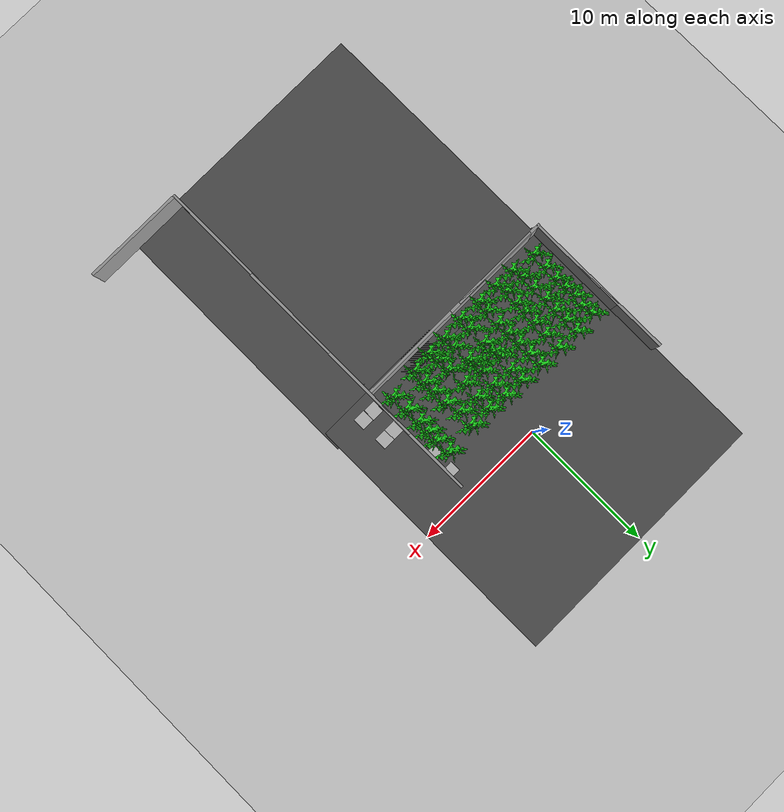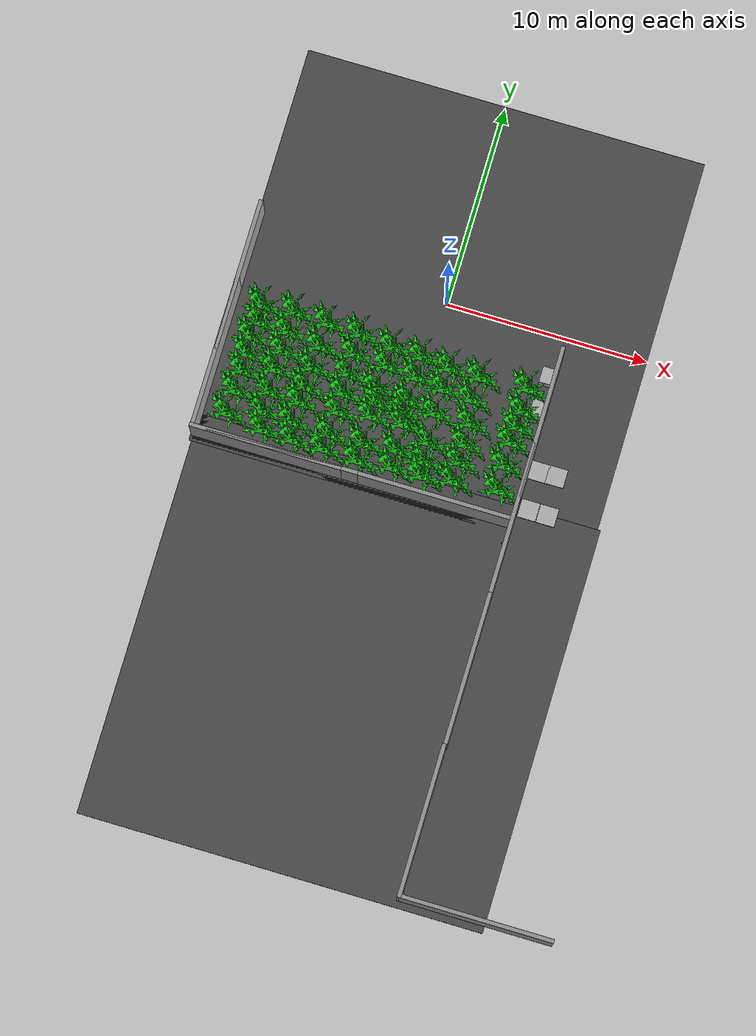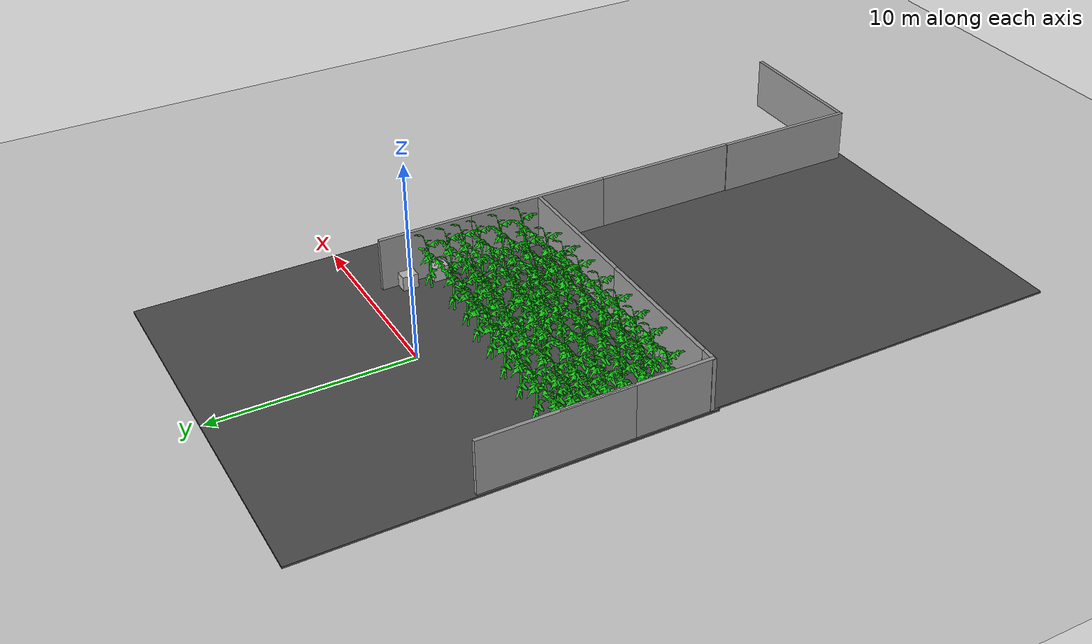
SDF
<sdf version="1.7">
 <world name="default">
  <model name="ground_plane">
   <static>1</static>
   <link name="link">
    <collision name="collision">
     <geometry><plane><normal>0 0 1</normal><size>100 100</size></plane></geometry>
     <surface><friction><ode><mu>100</mu><mu2>50</mu2></ode></friction></surface>
    </collision>
    <visual name="visual">
     <cast_shadows>0</cast_shadows>
     <geometry><plane><normal>0 0 1</normal><size>100 100</size></plane></geometry>
     <material>
      <script><uri>file://media/materials/scripts/gazebo.material</uri><name>Gazebo/Grey</name></script>
     </material>
    </visual>
   </link>
  </model>
  <model name="plant_clone">
   <static>1</static>
   <link name="link">
    <visual name="visual">
     <geometry><mesh><scale>0.01 0.01 0.01</scale><uri>model://plant/meshes/plant.STL</uri></mesh></geometry>
     <material>
      <ambient>0.1 0.8 0.1 1</ambient>
      <diffuse>0.1 0.8 0.1 1</diffuse>
      <specular>0.01 0.01 0.01 1</specular>
      <emissive>0 0 0 1</emissive>
     </material>
    </visual>
   </link>
   <pose>1.66545 -2.31829 0.002201 1.57 -0 0</pose>
  </model>
  <model name="plant_clone_0">
   <static>1</static>
   <link name="link">
    <visual name="visual">
     <geometry><mesh><scale>0.01 0.01 0.01</scale><uri>model://plant/meshes/plant.STL</uri></mesh></geometry>
     <material>
      <ambient>0.1 0.8 0.1 1</ambient>
      <diffuse>0.1 0.8 0.1 1</diffuse>
      <specular>0.01 0.01 0.01 1</specular>
      <emissive>0 0 0 1</emissive>
     </material>
    </visual>
   </link>
   <pose>1.5257 -3.44822 0.004669 1.57 -0 0</pose>
  </model>
  <model name="plant_clone_1_clone_10">
   <static>1</static>
   <link name="link">
    <visual name="visual">
     <geometry><mesh><scale>0.01 0.01 0.01</scale><uri>model://plant/meshes/plant.STL</uri></mesh></geometry>
     <material>
      <ambient>0.1 0.8 0.1 1</ambient>
      <diffuse>0.1 0.8 0.1 1</diffuse>
      <specular>0.01 0.01 0.01 1</specular>
      <emissive>0 0 0 1</emissive>
     </material>
    </visual>
   </link>
   <pose>0.130082 -2.29707 0.000845 1.57 -0 0</pose>
  </model>
  <model name="plant_clone_1_clone_11">
   <static>1</static>
   <link name="link">
    <visual name="visual">
     <geometry><mesh><scale>0.01 0.01 0.01</scale><uri>model://plant/meshes/plant.STL</uri></mesh></geometry>
     <material>
      <ambient>0.1 0.8 0.1 1</ambient>
      <diffuse>0.1 0.8 0.1 1</diffuse>
      <specular>0.01 0.01 0.01 1</specular>
      <emissive>0 0 0 1</emissive>
     </material>
    </visual>
   </link>
   <pose>0.121458 -3.34587 0.000845 1.57 -0 0</pose>
  </model>
  <model name="plant_clone_1_clone_13">
   <static>1</static>
   <link name="link">
    <visual name="visual">
     <geometry><mesh><scale>0.01 0.01 0.01</scale><uri>model://plant/meshes/plant.STL</uri></mesh></geometry>
     <material>
      <ambient>0.1 0.8 0.1 1</ambient>
      <diffuse>0.1 0.8 0.1 1</diffuse>
      <specular>0.01 0.01 0.01 1</specular>
      <emissive>0 0 0 1</emissive>
     </material>
    </visual>
   </link>
   <pose>-1.29326 -2.14513 0.000845 1.57 -0 0</pose>
  </model>
  <model name="plant_clone_1_clone_14">
   <static>1</static>
   <link name="link">
    <visual name="visual">
     <geometry><mesh><scale>0.01 0.01 0.01</scale><uri>model://plant/meshes/plant.STL</uri></mesh></geometry>
     <material>
      <ambient>0.1 0.8 0.1 1</ambient>
      <diffuse>0.1 0.8 0.1 1</diffuse>
      <specular>0.01 0.01 0.01 1</specular>
      <emissive>0 0 0 1</emissive>
     </material>
    </visual>
   </link>
   <pose>-1.26249 -3.15905 0.000845 1.57 -0 0</pose>
  </model>
  <model name="plant_clone_1_clone_16">
   <static>1</static>
   <link name="link">
    <visual name="visual">
     <geometry><mesh><scale>0.01 0.01 0.01</scale><uri>model://plant/meshes/plant.STL</uri></mesh></geometry>
     <material>
      <ambient>0.1 0.8 0.1 1</ambient>
      <diffuse>0.1 0.8 0.1 1</diffuse>
      <specular>0.01 0.01 0.01 1</specular>
      <emissive>0 0 0 1</emissive>
     </material>
    </visual>
   </link>
   <pose>-2.76366 -2.09337 0.000845 1.57 -0 0</pose>
  </model>
  <model name="plant_clone_1_clone_17">
   <static>1</static>
   <link name="link">
    <visual name="visual">
     <geometry><mesh><scale>0.01 0.01 0.01</scale><uri>model://plant/meshes/plant.STL</uri></mesh></geometry>
     <material>
      <ambient>0.1 0.8 0.1 1</ambient>
      <diffuse>0.1 0.8 0.1 1</diffuse>
      <specular>0.01 0.01 0.01 1</specular>
      <emissive>0 0 0 1</emissive>
     </material>
    </visual>
   </link>
   <pose>-2.75946 -3.03792 0.000845 1.57 -0 0</pose>
  </model>
  <model name="plant_clone_1_clone_19">
   <static>1</static>
   <link name="link">
    <visual name="visual">
     <geometry><mesh><scale>0.01 0.01 0.01</scale><uri>model://plant/meshes/plant.STL</uri></mesh></geometry>
     <material>
      <ambient>0.1 0.8 0.1 1</ambient>
      <diffuse>0.1 0.8 0.1 1</diffuse>
      <specular>0.01 0.01 0.01 1</specular>
      <emissive>0 0 0 1</emissive>
     </material>
    </visual>
   </link>
   <pose>3.972 -2.18792 0.000845 1.57 -0 0</pose>
  </model>
  <model name="plant_clone_1_clone_20">
   <static>1</static>
   <link name="link">
    <visual name="visual">
     <geometry><mesh><scale>0.01 0.01 0.01</scale><uri>model://plant/meshes/plant.STL</uri></mesh></geometry>
     <material>
      <ambient>0.1 0.8 0.1 1</ambient>
      <diffuse>0.1 0.8 0.1 1</diffuse>
      <specular>0.01 0.01 0.01 1</specular>
      <emissive>0 0 0 1</emissive>
     </material>
    </visual>
   </link>
   <pose>4.03807 -3.30841 0.000845 1.57 -0 0</pose>
  </model>
  <model name="grey_wall_clone_clone_1">
   <static>1</static>
   <link name="link">
    <pose>0 0 1.4 0 -0 0</pose>
    <collision name="collision"><geometry><box><size>7.5 0.2 2.8</size></box></geometry></collision>
    <visual name="visual">
     <cast_shadows>0</cast_shadows>
     <geometry><box><size>7.5 0.2 2.8</size></box></geometry>
     <material>
      <script>
       <uri>model://grey_wall/materials/scripts</uri>
       <uri>model://grey_wall/materials/textures</uri>
       <name>vrc/grey_wall</name>
      </script>
     </material>
    </visual>
   </link>
   <pose>5.99553 -4.61755 0 0 -0 1.57</pose>
  </model>
  <model name="grey_wall_clone_clone_1_clone">
   <static>1</static>
   <link name="link">
    <pose>0 0 1.4 0 -0 0</pose>
    <collision name="collision"><geometry><box><size>7.5 0.2 2.8</size></box></geometry></collision>
    <visual name="visual">
     <cast_shadows>0</cast_shadows>
     <geometry><box><size>7.5 0.2 2.8</size></box></geometry>
     <material>
      <script>
       <uri>model://grey_wall/materials/scripts</uri>
       <uri>model://grey_wall/materials/textures</uri>
       <name>vrc/grey_wall</name>
      </script>
     </material>
    </visual>
   </link>
   <pose>5.98359 -9.46121 0 0 -0 1.57</pose>
  </model>
  <model name="cafe_table">
   <static>1</static>
   <link name="link">
    <collision name="surface">
     <pose>0 0 0.755 0 -0 0</pose>
     <geometry><box><size>0.913 0.913 0.04</size></box></geometry>
    </collision>
    <collision name="column">
     <pose>0 0 0.37 0 -0 0</pose>
     <geometry><box><size>0.042 0.042 0.74</size></box></geometry>
    </collision>
    <collision name="base">
     <pose>0 0 0.02 0 -0 0</pose>
     <geometry><box><size>0.56 0.56 0.04</size></box></geometry>
    </collision>
    <visual name="visual">
     <geometry><mesh><uri>model://cafe_table/meshes/cafe_table.dae</uri></mesh></geometry>
    </visual>
   </link>
   <pose>6.58649 -8.57944 0 0 -0 0</pose>
  </model>
  <model name="cafe_table_clone">
   <static>1</static>
   <link name="link">
    <collision name="surface">
     <pose>0 0 0.755 0 -0 0</pose>
     <geometry><box><size>0.913 0.913 0.04</size></box></geometry>
    </collision>
    <collision name="column">
     <pose>0 0 0.37 0 -0 0</pose>
     <geometry><box><size>0.042 0.042 0.74</size></box></geometry>
    </collision>
    <collision name="base">
     <pose>0 0 0.02 0 -0 0</pose>
     <geometry><box><size>0.56 0.56 0.04</size></box></geometry>
    </collision>
    <visual name="visual">
     <geometry><mesh><uri>model://cafe_table/meshes/cafe_table.dae</uri></mesh></geometry>
    </visual>
   </link>
   <pose>7.51863 -8.58481 0 0 -0 0</pose>
  </model>
  <model name="cafe_table_clone_clone">
   <static>1</static>
   <link name="link">
    <collision name="surface">
     <pose>0 0 0.755 0 -0 0</pose>
     <geometry><box><size>0.913 0.913 0.04</size></box></geometry>
    </collision>
    <collision name="column">
     <pose>0 0 0.37 0 -0 0</pose>
     <geometry><box><size>0.042 0.042 0.74</size></box></geometry>
    </collision>
    <collision name="base">
     <pose>0 0 0.02 0 -0 0</pose>
     <geometry><box><size>0.56 0.56 0.04</size></box></geometry>
    </collision>
    <visual name="visual">
     <geometry><mesh><uri>model://cafe_table/meshes/cafe_table.dae</uri></mesh></geometry>
    </visual>
   </link>
   <pose>6.53813 -6.66995 0 0 -0 0</pose>
  </model>
  <model name="cafe_table_clone_clone_0">
   <static>1</static>
   <link name="link">
    <collision name="surface">
     <pose>0 0 0.755 0 -0 0</pose>
     <geometry><box><size>0.913 0.913 0.04</size></box></geometry>
    </collision>
    <collision name="column">
     <pose>0 0 0.37 0 -0 0</pose>
     <geometry><box><size>0.042 0.042 0.74</size></box></geometry>
    </collision>
    <collision name="base">
     <pose>0 0 0.02 0 -0 0</pose>
     <geometry><box><size>0.56 0.56 0.04</size></box></geometry>
    </collision>
    <visual name="visual">
     <geometry><mesh><uri>model://cafe_table/meshes/cafe_table.dae</uri></mesh></geometry>
    </visual>
   </link>
   <pose>7.40882 -6.66009 0 0 -0 0</pose>
  </model>
  <model name="coke_can_clone_0">
   <link name="link">
    <inertial>
     <pose>0 0 0.06 0 -0 0</pose>
     <mass>0.39</mass>
     <inertia>
      <ixx>0.00055575</ixx>
      <ixy>0</ixy>
      <ixz>0</ixz>
      <iyy>0.00055575</iyy>
      <iyz>0</iyz>
      <izz>0.0001755</izz>
     </inertia>
    </inertial>
    <collision name="collision">
     <pose>0.003937 0.004724 -0.18 0 -0 0</pose>
     <geometry><mesh><uri>model://coke_can/meshes/coke_can.dae</uri></mesh></geometry>
     <surface>
      <friction><ode><mu>1</mu><mu2>1</mu2></ode></friction>
      <contact><ode><kp>1e+07</kp><kd>1</kd><min_depth>0.001</min_depth><max_vel>0.1</max_vel></ode></contact>
     </surface>
    </collision>
    <visual name="visual">
     <pose>0.003937 0.004724 -0.18 0 -0 0</pose>
     <geometry><mesh><uri>model://coke_can/meshes/coke_can.dae</uri></mesh></geometry>
    </visual>
   </link>
   <pose>5.79005 -10.3478 0.04743 -0.009854 0.00353 -0.226614</pose>
  </model>
  <model name="number5">
   <pose>5.71 -2.09 0.4 0 -0 0</pose>
   <static>1</static>
   <link name="link">
    <visual name="visual">
     <geometry><mesh><uri>model://number1/meshes/number.dae</uri></mesh></geometry>
     <material>
      <script>
       <uri>model://number5/materials/scripts</uri>
       <uri>model://number5/materials/textures</uri>
       <name>Number/Five</name>
      </script>
     </material>
    </visual>
   </link>
  </model>
  <model name="asphalt_plane">
   <static>1</static>
   <link name="link">
    <collision name="collision"><geometry><box><size>20 20 0.1</size></box></geometry></collision>
    <visual name="visual">
     <cast_shadows>0</cast_shadows>
     <geometry><box><size>20 20 0.1</size></box></geometry>
     <material>
      <script>
       <uri>model://asphalt_plane/materials/scripts</uri>
       <uri>model://asphalt_plane/materials/textures</uri>
       <name>vrc/asphalt</name>
      </script>
     </material>
    </visual>
   </link>
   <pose>0.007662 0.157905 0 0 -0 0</pose>
  </model>
  <model name="asphalt_plane_clone_clone_2">
   <static>1</static>
   <link name="link">
    <collision name="collision"><geometry><box><size>20 20 0.1</size></box></geometry></collision>
    <visual name="visual">
     <cast_shadows>0</cast_shadows>
     <geometry><box><size>20 20 0.1</size></box></geometry>
     <material>
      <script>
       <uri>model://asphalt_plane/materials/scripts</uri>
       <uri>model://asphalt_plane/materials/textures</uri>
       <name>vrc/asphalt</name>
      </script>
     </material>
    </visual>
   </link>
   <pose>0.14456 -18.4475 0 0 -0 0</pose>
  </model>
  <model name="plant_clone_0_clone">
   <static>1</static>
   <link name="link">
    <visual name="visual">
     <geometry><mesh><scale>0.01 0.01 0.01</scale><uri>model://plant/meshes/plant.STL</uri></mesh></geometry>
     <material>
      <ambient>0.1 0.8 0.1 1</ambient>
      <diffuse>0.1 0.8 0.1 1</diffuse>
      <specular>0.01 0.01 0.01 1</specular>
      <emissive>0 0 0 1</emissive>
     </material>
    </visual>
   </link>
   <pose>1.83058 -4.58172 0.004669 1.57 -0 0</pose>
  </model>
  <model name="plant_clone_0_clone_0">
   <static>1</static>
   <link name="link">
    <visual name="visual">
     <geometry><mesh><scale>0.01 0.01 0.01</scale><uri>model://plant/meshes/plant.STL</uri></mesh></geometry>
     <material>
      <ambient>0.1 0.8 0.1 1</ambient>
      <diffuse>0.1 0.8 0.1 1</diffuse>
      <specular>0.01 0.01 0.01 1</specular>
      <emissive>0 0 0 1</emissive>
     </material>
    </visual>
   </link>
   <pose>1.83981 -5.61852 0.004669 1.57 -0 0</pose>
  </model>
  <model name="plant_clone_0_clone_1">
   <static>1</static>
   <link name="link">
    <visual name="visual">
     <geometry><mesh><scale>0.01 0.01 0.01</scale><uri>model://plant/meshes/plant.STL</uri></mesh></geometry>
     <material>
      <ambient>0.1 0.8 0.1 1</ambient>
      <diffuse>0.1 0.8 0.1 1</diffuse>
      <specular>0.01 0.01 0.01 1</specular>
      <emissive>0 0 0 1</emissive>
     </material>
    </visual>
   </link>
   <pose>1.85597 -6.51405 0.004669 1.57 -0 0</pose>
  </model>
  <model name="plant_clone_0_clone_2">
   <static>1</static>
   <link name="link">
    <visual name="visual">
     <geometry><mesh><scale>0.01 0.01 0.01</scale><uri>model://plant/meshes/plant.STL</uri></mesh></geometry>
     <material>
      <ambient>0.1 0.8 0.1 1</ambient>
      <diffuse>0.1 0.8 0.1 1</diffuse>
      <specular>0.01 0.01 0.01 1</specular>
      <emissive>0 0 0 1</emissive>
     </material>
    </visual>
   </link>
   <pose>1.76945 -7.47281 0.004669 1.57 -0 0</pose>
  </model>
  <model name="plant_clone_0_clone_3">
   <static>1</static>
   <link name="link">
    <visual name="visual">
     <geometry><mesh><scale>0.01 0.01 0.01</scale><uri>model://plant/meshes/plant.STL</uri></mesh></geometry>
     <material>
      <ambient>0.1 0.8 0.1 1</ambient>
      <diffuse>0.1 0.8 0.1 1</diffuse>
      <specular>0.01 0.01 0.01 1</specular>
      <emissive>0 0 0 1</emissive>
     </material>
    </visual>
   </link>
   <pose>3.92575 -4.90773 0.004669 1.57 -0 0</pose>
  </model>
  <model name="plant_clone_0_clone_4">
   <static>1</static>
   <link name="link">
    <visual name="visual">
     <geometry><mesh><scale>0.01 0.01 0.01</scale><uri>model://plant/meshes/plant.STL</uri></mesh></geometry>
     <material>
      <ambient>0.1 0.8 0.1 1</ambient>
      <diffuse>0.1 0.8 0.1 1</diffuse>
      <specular>0.01 0.01 0.01 1</specular>
      <emissive>0 0 0 1</emissive>
     </material>
    </visual>
   </link>
   <pose>3.94511 -6.06211 0.004669 1.57 -0 0</pose>
  </model>
  <model name="plant_clone_0_clone_5">
   <static>1</static>
   <link name="link">
    <visual name="visual">
     <geometry><mesh><scale>0.01 0.01 0.01</scale><uri>model://plant/meshes/plant.STL</uri></mesh></geometry>
     <material>
      <ambient>0.1 0.8 0.1 1</ambient>
      <diffuse>0.1 0.8 0.1 1</diffuse>
      <specular>0.01 0.01 0.01 1</specular>
      <emissive>0 0 0 1</emissive>
     </material>
    </visual>
   </link>
   <pose>3.99157 -7.29111 0.004669 1.57 -0 0</pose>
  </model>
  <model name="plant_clone_0_clone_6">
   <static>1</static>
   <link name="link">
    <visual name="visual">
     <geometry><mesh><scale>0.01 0.01 0.01</scale><uri>model://plant/meshes/plant.STL</uri></mesh></geometry>
     <material>
      <ambient>0.1 0.8 0.1 1</ambient>
      <diffuse>0.1 0.8 0.1 1</diffuse>
      <specular>0.01 0.01 0.01 1</specular>
      <emissive>0 0 0 1</emissive>
     </material>
    </visual>
   </link>
   <pose>0.053012 -4.57599 0.004669 1.57 -0 0</pose>
  </model>
  <model name="plant_clone_0_clone_7">
   <static>1</static>
   <link name="link">
    <visual name="visual">
     <geometry><mesh><scale>0.01 0.01 0.01</scale><uri>model://plant/meshes/plant.STL</uri></mesh></geometry>
     <material>
      <ambient>0.1 0.8 0.1 1</ambient>
      <diffuse>0.1 0.8 0.1 1</diffuse>
      <specular>0.01 0.01 0.01 1</specular>
      <emissive>0 0 0 1</emissive>
     </material>
    </visual>
   </link>
   <pose>0.13656 -6.01103 0.004669 1.57 -0 0</pose>
  </model>
  <model name="plant_clone_0_clone_8">
   <static>1</static>
   <link name="link">
    <visual name="visual">
     <geometry><mesh><scale>0.01 0.01 0.01</scale><uri>model://plant/meshes/plant.STL</uri></mesh></geometry>
     <material>
      <ambient>0.1 0.8 0.1 1</ambient>
      <diffuse>0.1 0.8 0.1 1</diffuse>
      <specular>0.01 0.01 0.01 1</specular>
      <emissive>0 0 0 1</emissive>
     </material>
    </visual>
   </link>
   <pose>0.171244 -6.9606 0.004669 1.57 -0 0</pose>
  </model>
  <model name="plant_clone_0_clone_9">
   <static>1</static>
   <link name="link">
    <visual name="visual">
     <geometry><mesh><scale>0.01 0.01 0.01</scale><uri>model://plant/meshes/plant.STL</uri></mesh></geometry>
     <material>
      <ambient>0.1 0.8 0.1 1</ambient>
      <diffuse>0.1 0.8 0.1 1</diffuse>
      <specular>0.01 0.01 0.01 1</specular>
      <emissive>0 0 0 1</emissive>
     </material>
    </visual>
   </link>
   <pose>-1.33943 -4.37623 0.004669 1.57 -0 0</pose>
  </model>
  <model name="plant_clone_0_clone_10">
   <static>1</static>
   <link name="link">
    <visual name="visual">
     <geometry><mesh><scale>0.01 0.01 0.01</scale><uri>model://plant/meshes/plant.STL</uri></mesh></geometry>
     <material>
      <ambient>0.1 0.8 0.1 1</ambient>
      <diffuse>0.1 0.8 0.1 1</diffuse>
      <specular>0.01 0.01 0.01 1</specular>
      <emissive>0 0 0 1</emissive>
     </material>
    </visual>
   </link>
   <pose>-1.26663 -5.51932 0.004669 1.57 -0 0</pose>
  </model>
  <model name="plant_clone_0_clone_11">
   <static>1</static>
   <link name="link">
    <visual name="visual">
     <geometry><mesh><scale>0.01 0.01 0.01</scale><uri>model://plant/meshes/plant.STL</uri></mesh></geometry>
     <material>
      <ambient>0.1 0.8 0.1 1</ambient>
      <diffuse>0.1 0.8 0.1 1</diffuse>
      <specular>0.01 0.01 0.01 1</specular>
      <emissive>0 0 0 1</emissive>
     </material>
    </visual>
   </link>
   <pose>-1.19691 -6.79951 0.004669 1.57 -0 0</pose>
  </model>
  <model name="plant_clone_0_clone_12">
   <static>1</static>
   <link name="link">
    <visual name="visual">
     <geometry><mesh><scale>0.01 0.01 0.01</scale><uri>model://plant/meshes/plant.STL</uri></mesh></geometry>
     <material>
      <ambient>0.1 0.8 0.1 1</ambient>
      <diffuse>0.1 0.8 0.1 1</diffuse>
      <specular>0.01 0.01 0.01 1</specular>
      <emissive>0 0 0 1</emissive>
     </material>
    </visual>
   </link>
   <pose>-2.95122 -4.20861 0.004669 1.57 -0 0</pose>
  </model>
  <model name="plant_clone_0_clone_13">
   <static>1</static>
   <link name="link">
    <visual name="visual">
     <geometry><mesh><scale>0.01 0.01 0.01</scale><uri>model://plant/meshes/plant.STL</uri></mesh></geometry>
     <material>
      <ambient>0.1 0.8 0.1 1</ambient>
      <diffuse>0.1 0.8 0.1 1</diffuse>
      <specular>0.01 0.01 0.01 1</specular>
      <emissive>0 0 0 1</emissive>
     </material>
    </visual>
   </link>
   <pose>-2.81405 -5.57268 0.004669 1.57 -0 0</pose>
  </model>
  <model name="plant_clone_0_clone_14">
   <static>1</static>
   <link name="link">
    <visual name="visual">
     <geometry><mesh><scale>0.01 0.01 0.01</scale><uri>model://plant/meshes/plant.STL</uri></mesh></geometry>
     <material>
      <ambient>0.1 0.8 0.1 1</ambient>
      <diffuse>0.1 0.8 0.1 1</diffuse>
      <specular>0.01 0.01 0.01 1</specular>
      <emissive>0 0 0 1</emissive>
     </material>
    </visual>
   </link>
   <pose>-2.7952 -6.92985 0.004669 1.57 -0 0</pose>
  </model>
  <model name="plant_clone_0_clone_15">
   <static>1</static>
   <link name="link">
    <visual name="visual">
     <geometry><mesh><scale>0.01 0.01 0.01</scale><uri>model://plant/meshes/plant.STL</uri></mesh></geometry>
     <material>
      <ambient>0.1 0.8 0.1 1</ambient>
      <diffuse>0.1 0.8 0.1 1</diffuse>
      <specular>0.01 0.01 0.01 1</specular>
      <emissive>0 0 0 1</emissive>
     </material>
    </visual>
   </link>
   <pose>-1.17111 -7.66171 0.004669 1.57 -0 0</pose>
  </model>
  <model name="plant_clone_0_clone_30_clone_13_clone_5_clone_18">
   <static>1</static>
   <link name="link">
    <visual name="visual">
     <geometry><mesh><scale>0.01 0.01 0.01</scale><uri>model://plant/meshes/plant.STL</uri></mesh></geometry>
     <material>
      <ambient>0.1 0.8 0.1 1</ambient>
      <diffuse>0.1 0.8 0.1 1</diffuse>
      <specular>0.01 0.01 0.01 1</specular>
      <emissive>0 0 0 1</emissive>
     </material>
    </visual>
   </link>
   <pose>3.98696 -4.10695 0.004669 1.57 -0 0</pose>
  </model>
  <model name="plant_clone_0_clone_30_clone_13_clone_5_clone_20">
   <static>1</static>
   <link name="link">
    <visual name="visual">
     <geometry><mesh><scale>0.01 0.01 0.01</scale><uri>model://plant/meshes/plant.STL</uri></mesh></geometry>
     <material>
      <ambient>0.1 0.8 0.1 1</ambient>
      <diffuse>0.1 0.8 0.1 1</diffuse>
      <specular>0.01 0.01 0.01 1</specular>
      <emissive>0 0 0 1</emissive>
     </material>
    </visual>
   </link>
   <pose>0.288638 -7.66007 0.004669 1.57 -0 0</pose>
  </model>
  <model name="plant_clone_0_clone_30_clone_13_clone_5_clone_21">
   <static>1</static>
   <link name="link">
    <visual name="visual">
     <geometry><mesh><scale>0.01 0.01 0.01</scale><uri>model://plant/meshes/plant.STL</uri></mesh></geometry>
     <material>
      <ambient>0.1 0.8 0.1 1</ambient>
      <diffuse>0.1 0.8 0.1 1</diffuse>
      <specular>0.01 0.01 0.01 1</specular>
      <emissive>0 0 0 1</emissive>
     </material>
    </visual>
   </link>
   <pose>-2.86809 -7.80157 0.004669 1.57 -0 0</pose>
  </model>
  <model name="plant_clone_0_clone_30_clone_13_clone_5_clone_22">
   <static>1</static>
   <link name="link">
    <visual name="visual">
     <geometry><mesh><scale>0.01 0.01 0.01</scale><uri>model://plant/meshes/plant.STL</uri></mesh></geometry>
     <material>
      <ambient>0.1 0.8 0.1 1</ambient>
      <diffuse>0.1 0.8 0.1 1</diffuse>
      <specular>0.01 0.01 0.01 1</specular>
      <emissive>0 0 0 1</emissive>
     </material>
    </visual>
   </link>
   <pose>-2.76263 -4.87745 0.004669 1.57 -0 0</pose>
  </model>
  <model name="plant_clone_0_clone_30_clone_13_clone_5_clone_23">
   <static>1</static>
   <link name="link">
    <visual name="visual">
     <geometry><mesh><scale>0.01 0.01 0.01</scale><uri>model://plant/meshes/plant.STL</uri></mesh></geometry>
     <material>
      <ambient>0.1 0.8 0.1 1</ambient>
      <diffuse>0.1 0.8 0.1 1</diffuse>
      <specular>0.01 0.01 0.01 1</specular>
      <emissive>0 0 0 1</emissive>
     </material>
    </visual>
   </link>
   <pose>-1.45893 -4.95148 0.004669 1.57 -0 0</pose>
  </model>
  <model name="plant_clone_0_clone_30_clone_13_clone_5_clone_25">
   <static>1</static>
   <link name="link">
    <visual name="visual">
     <geometry><mesh><scale>0.01 0.01 0.01</scale><uri>model://plant/meshes/plant.STL</uri></mesh></geometry>
     <material>
      <ambient>0.1 0.8 0.1 1</ambient>
      <diffuse>0.1 0.8 0.1 1</diffuse>
      <specular>0.01 0.01 0.01 1</specular>
      <emissive>0 0 0 1</emissive>
     </material>
    </visual>
   </link>
   <pose>-4.4271 -1.9314 0.004669 1.57 -0 0</pose>
  </model>
  <model name="plant_clone_0_clone_30_clone_13_clone_5_clone_26">
   <static>1</static>
   <link name="link">
    <visual name="visual">
     <geometry><mesh><scale>0.01 0.01 0.01</scale><uri>model://plant/meshes/plant.STL</uri></mesh></geometry>
     <material>
      <ambient>0.1 0.8 0.1 1</ambient>
      <diffuse>0.1 0.8 0.1 1</diffuse>
      <specular>0.01 0.01 0.01 1</specular>
      <emissive>0 0 0 1</emissive>
     </material>
    </visual>
   </link>
   <pose>-4.42687 -2.91947 0.004669 1.57 -0 0</pose>
  </model>
  <model name="plant_clone_0_clone_30_clone_13_clone_5_clone_27">
   <static>1</static>
   <link name="link">
    <visual name="visual">
     <geometry><mesh><scale>0.01 0.01 0.01</scale><uri>model://plant/meshes/plant.STL</uri></mesh></geometry>
     <material>
      <ambient>0.1 0.8 0.1 1</ambient>
      <diffuse>0.1 0.8 0.1 1</diffuse>
      <specular>0.01 0.01 0.01 1</specular>
      <emissive>0 0 0 1</emissive>
     </material>
    </visual>
   </link>
   <pose>-4.45227 -3.91936 0.004669 1.57 -0 0</pose>
  </model>
  <model name="plant_clone_0_clone_30_clone_13_clone_5_clone_28">
   <static>1</static>
   <link name="link">
    <visual name="visual">
     <geometry><mesh><scale>0.01 0.01 0.01</scale><uri>model://plant/meshes/plant.STL</uri></mesh></geometry>
     <material>
      <ambient>0.1 0.8 0.1 1</ambient>
      <diffuse>0.1 0.8 0.1 1</diffuse>
      <specular>0.01 0.01 0.01 1</specular>
      <emissive>0 0 0 1</emissive>
     </material>
    </visual>
   </link>
   <pose>-4.42606 -4.8825 0.004669 1.57 -0 0</pose>
  </model>
  <model name="plant_clone_0_clone_30_clone_13_clone_5_clone_29">
   <static>1</static>
   <link name="link">
    <visual name="visual">
     <geometry><mesh><scale>0.01 0.01 0.01</scale><uri>model://plant/meshes/plant.STL</uri></mesh></geometry>
     <material>
      <ambient>0.1 0.8 0.1 1</ambient>
      <diffuse>0.1 0.8 0.1 1</diffuse>
      <specular>0.01 0.01 0.01 1</specular>
      <emissive>0 0 0 1</emissive>
     </material>
    </visual>
   </link>
   <pose>-4.38664 -5.82056 0.004669 1.57 -0 0</pose>
  </model>
  <model name="plant_clone_0_clone_30_clone_13_clone_5_clone_30">
   <static>1</static>
   <link name="link">
    <visual name="visual">
     <geometry><mesh><scale>0.01 0.01 0.01</scale><uri>model://plant/meshes/plant.STL</uri></mesh></geometry>
     <material>
      <ambient>0.1 0.8 0.1 1</ambient>
      <diffuse>0.1 0.8 0.1 1</diffuse>
      <specular>0.01 0.01 0.01 1</specular>
      <emissive>0 0 0 1</emissive>
     </material>
    </visual>
   </link>
   <pose>-4.46647 -6.97065 0.004669 1.57 -0 0</pose>
  </model>
  <model name="plant_clone_0_clone_30_clone_13_clone_5_clone_30_clone_0">
   <static>1</static>
   <link name="link">
    <visual name="visual">
     <geometry><mesh><scale>0.01 0.01 0.01</scale><uri>model://plant/meshes/plant.STL</uri></mesh></geometry>
     <material>
      <ambient>0.1 0.8 0.1 1</ambient>
      <diffuse>0.1 0.8 0.1 1</diffuse>
      <specular>0.01 0.01 0.01 1</specular>
      <emissive>0 0 0 1</emissive>
     </material>
    </visual>
   </link>
   <pose>-6.0685 -1.86292 0.004669 1.57 -0 0</pose>
  </model>
  <model name="plant_clone_0_clone_30_clone_13_clone_5_clone_30_clone_1">
   <static>1</static>
   <link name="link">
    <visual name="visual">
     <geometry><mesh><scale>0.01 0.01 0.01</scale><uri>model://plant/meshes/plant.STL</uri></mesh></geometry>
     <material>
      <ambient>0.1 0.8 0.1 1</ambient>
      <diffuse>0.1 0.8 0.1 1</diffuse>
      <specular>0.01 0.01 0.01 1</specular>
      <emissive>0 0 0 1</emissive>
     </material>
    </visual>
   </link>
   <pose>-6.09846 -3.05046 0.004669 1.57 -0 0</pose>
  </model>
  <model name="plant_clone_0_clone_30_clone_13_clone_5_clone_30_clone_2">
   <static>1</static>
   <link name="link">
    <visual name="visual">
     <geometry><mesh><scale>0.01 0.01 0.01</scale><uri>model://plant/meshes/plant.STL</uri></mesh></geometry>
     <material>
      <ambient>0.1 0.8 0.1 1</ambient>
      <diffuse>0.1 0.8 0.1 1</diffuse>
      <specular>0.01 0.01 0.01 1</specular>
      <emissive>0 0 0 1</emissive>
     </material>
    </visual>
   </link>
   <pose>-6.16787 -4.13962 0.004669 1.57 -0 0</pose>
  </model>
  <model name="plant_clone_0_clone_30_clone_13_clone_5_clone_30_clone_3">
   <static>1</static>
   <link name="link">
    <visual name="visual">
     <geometry><mesh><scale>0.01 0.01 0.01</scale><uri>model://plant/meshes/plant.STL</uri></mesh></geometry>
     <material>
      <ambient>0.1 0.8 0.1 1</ambient>
      <diffuse>0.1 0.8 0.1 1</diffuse>
      <specular>0.01 0.01 0.01 1</specular>
      <emissive>0 0 0 1</emissive>
     </material>
    </visual>
   </link>
   <pose>-6.23363 -5.12539 0.004669 1.57 -0 0</pose>
  </model>
  <model name="plant_clone_0_clone_30_clone_13_clone_5_clone_30_clone_4">
   <static>1</static>
   <link name="link">
    <visual name="visual">
     <geometry><mesh><scale>0.01 0.01 0.01</scale><uri>model://plant/meshes/plant.STL</uri></mesh></geometry>
     <material>
      <ambient>0.1 0.8 0.1 1</ambient>
      <diffuse>0.1 0.8 0.1 1</diffuse>
      <specular>0.01 0.01 0.01 1</specular>
      <emissive>0 0 0 1</emissive>
     </material>
    </visual>
   </link>
   <pose>-6.27943 -5.88954 0.004669 1.57 -0 0</pose>
  </model>
  <model name="plant_clone_0_clone_30_clone_13_clone_5_clone_30_clone_5">
   <static>1</static>
   <link name="link">
    <visual name="visual">
     <geometry><mesh><scale>0.01 0.01 0.01</scale><uri>model://plant/meshes/plant.STL</uri></mesh></geometry>
     <material>
      <ambient>0.1 0.8 0.1 1</ambient>
      <diffuse>0.1 0.8 0.1 1</diffuse>
      <specular>0.01 0.01 0.01 1</specular>
      <emissive>0 0 0 1</emissive>
     </material>
    </visual>
   </link>
   <pose>-6.37099 -6.90839 0.004669 1.57 -0 0</pose>
  </model>
  <model name="plant_clone_0_clone_30_clone_13_clone_5_clone_30_clone_5_clone_0">
   <static>1</static>
   <link name="link">
    <visual name="visual">
     <geometry><mesh><scale>0.01 0.01 0.01</scale><uri>model://plant/meshes/plant.STL</uri></mesh></geometry>
     <material>
      <ambient>0.1 0.8 0.1 1</ambient>
      <diffuse>0.1 0.8 0.1 1</diffuse>
      <specular>0.01 0.01 0.01 1</specular>
      <emissive>0 0 0 1</emissive>
     </material>
    </visual>
   </link>
   <pose>-7.71463 -1.7837 0.004669 1.57 -0 0</pose>
  </model>
  <model name="plant_clone_0_clone_30_clone_13_clone_5_clone_30_clone_5_clone_1">
   <static>1</static>
   <link name="link">
    <visual name="visual">
     <geometry><mesh><scale>0.01 0.01 0.01</scale><uri>model://plant/meshes/plant.STL</uri></mesh></geometry>
     <material>
      <ambient>0.1 0.8 0.1 1</ambient>
      <diffuse>0.1 0.8 0.1 1</diffuse>
      <specular>0.01 0.01 0.01 1</specular>
      <emissive>0 0 0 1</emissive>
     </material>
    </visual>
   </link>
   <pose>-7.78828 -2.7855 0.004669 1.57 -0 0</pose>
  </model>
  <model name="plant_clone_0_clone_30_clone_13_clone_5_clone_30_clone_5_clone_2">
   <static>1</static>
   <link name="link">
    <visual name="visual">
     <geometry><mesh><scale>0.01 0.01 0.01</scale><uri>model://plant/meshes/plant.STL</uri></mesh></geometry>
     <material>
      <ambient>0.1 0.8 0.1 1</ambient>
      <diffuse>0.1 0.8 0.1 1</diffuse>
      <specular>0.01 0.01 0.01 1</specular>
      <emissive>0 0 0 1</emissive>
     </material>
    </visual>
   </link>
   <pose>-7.74814 -3.7523 0.004669 1.57 -0 0</pose>
  </model>
  <model name="plant_clone_0_clone_30_clone_13_clone_5_clone_30_clone_5_clone_3">
   <static>1</static>
   <link name="link">
    <visual name="visual">
     <geometry><mesh><scale>0.01 0.01 0.01</scale><uri>model://plant/meshes/plant.STL</uri></mesh></geometry>
     <material>
      <ambient>0.1 0.8 0.1 1</ambient>
      <diffuse>0.1 0.8 0.1 1</diffuse>
      <specular>0.01 0.01 0.01 1</specular>
      <emissive>0 0 0 1</emissive>
     </material>
    </visual>
   </link>
   <pose>-7.83383 -4.70125 0.004669 1.57 -0 0</pose>
  </model>
  <model name="plant_clone_0_clone_30_clone_13_clone_5_clone_30_clone_5_clone_4">
   <static>1</static>
   <link name="link">
    <visual name="visual">
     <geometry><mesh><scale>0.01 0.01 0.01</scale><uri>model://plant/meshes/plant.STL</uri></mesh></geometry>
     <material>
      <ambient>0.1 0.8 0.1 1</ambient>
      <diffuse>0.1 0.8 0.1 1</diffuse>
      <specular>0.01 0.01 0.01 1</specular>
      <emissive>0 0 0 1</emissive>
     </material>
    </visual>
   </link>
   <pose>-7.7944 -5.83019 0.004669 1.57 -0 0</pose>
  </model>
  <model name="plant_clone_0_clone_30_clone_13_clone_5_clone_30_clone_5_clone_5">
   <static>1</static>
   <link name="link">
    <visual name="visual">
     <geometry><mesh><scale>0.01 0.01 0.01</scale><uri>model://plant/meshes/plant.STL</uri></mesh></geometry>
     <material>
      <ambient>0.1 0.8 0.1 1</ambient>
      <diffuse>0.1 0.8 0.1 1</diffuse>
      <specular>0.01 0.01 0.01 1</specular>
      <emissive>0 0 0 1</emissive>
     </material>
    </visual>
   </link>
   <pose>-7.86378 -6.80861 0.004669 1.57 -0 0</pose>
  </model>
  <model name="plant_clone_0_clone_30_clone_13_clone_5_clone_30_clone_5_clone_clone_0">
   <static>1</static>
   <link name="link">
    <visual name="visual">
     <geometry><mesh><scale>0.01 0.01 0.01</scale><uri>model://plant/meshes/plant.STL</uri></mesh></geometry>
     <material>
      <ambient>0.1 0.8 0.1 1</ambient>
      <diffuse>0.1 0.8 0.1 1</diffuse>
      <specular>0.01 0.01 0.01 1</specular>
      <emissive>0 0 0 1</emissive>
     </material>
    </visual>
   </link>
   <pose>-9.3292 -1.90252 0.004669 1.57 -0 0</pose>
  </model>
  <model name="plant_clone_0_clone_30_clone_13_clone_5_clone_30_clone_5_clone_clone_1">
   <static>1</static>
   <link name="link">
    <visual name="visual">
     <geometry><mesh><scale>0.01 0.01 0.01</scale><uri>model://plant/meshes/plant.STL</uri></mesh></geometry>
     <material>
      <ambient>0.1 0.8 0.1 1</ambient>
      <diffuse>0.1 0.8 0.1 1</diffuse>
      <specular>0.01 0.01 0.01 1</specular>
      <emissive>0 0 0 1</emissive>
     </material>
    </visual>
   </link>
   <pose>-9.20993 -2.7238 0.004669 1.57 -0 0</pose>
  </model>
  <model name="plant_clone_0_clone_30_clone_13_clone_5_clone_30_clone_5_clone_clone_2">
   <static>1</static>
   <link name="link">
    <visual name="visual">
     <geometry><mesh><scale>0.01 0.01 0.01</scale><uri>model://plant/meshes/plant.STL</uri></mesh></geometry>
     <material>
      <ambient>0.1 0.8 0.1 1</ambient>
      <diffuse>0.1 0.8 0.1 1</diffuse>
      <specular>0.01 0.01 0.01 1</specular>
      <emissive>0 0 0 1</emissive>
     </material>
    </visual>
   </link>
   <pose>-9.40663 -3.49968 0.004669 1.57 -0 0</pose>
  </model>
  <model name="plant_clone_0_clone_30_clone_13_clone_5_clone_30_clone_5_clone_clone_3">
   <static>1</static>
   <link name="link">
    <visual name="visual">
     <geometry><mesh><scale>0.01 0.01 0.01</scale><uri>model://plant/meshes/plant.STL</uri></mesh></geometry>
     <material>
      <ambient>0.1 0.8 0.1 1</ambient>
      <diffuse>0.1 0.8 0.1 1</diffuse>
      <specular>0.01 0.01 0.01 1</specular>
      <emissive>0 0 0 1</emissive>
     </material>
    </visual>
   </link>
   <pose>-9.33068 -4.35925 0.004669 1.57 -0 0</pose>
  </model>
  <model name="plant_clone_0_clone_30_clone_13_clone_5_clone_30_clone_5_clone_clone_4">
   <static>1</static>
   <link name="link">
    <visual name="visual">
     <geometry><mesh><scale>0.01 0.01 0.01</scale><uri>model://plant/meshes/plant.STL</uri></mesh></geometry>
     <material>
      <ambient>0.1 0.8 0.1 1</ambient>
      <diffuse>0.1 0.8 0.1 1</diffuse>
      <specular>0.01 0.01 0.01 1</specular>
      <emissive>0 0 0 1</emissive>
     </material>
    </visual>
   </link>
   <pose>-9.29795 -5.20739 0.004669 1.57 -0 0</pose>
  </model>
  <model name="plant_clone_0_clone_30_clone_13_clone_5_clone_30_clone_5_clone_clone_5">
   <static>1</static>
   <link name="link">
    <visual name="visual">
     <geometry><mesh><scale>0.01 0.01 0.01</scale><uri>model://plant/meshes/plant.STL</uri></mesh></geometry>
     <material>
      <ambient>0.1 0.8 0.1 1</ambient>
      <diffuse>0.1 0.8 0.1 1</diffuse>
      <specular>0.01 0.01 0.01 1</specular>
      <emissive>0 0 0 1</emissive>
     </material>
    </visual>
   </link>
   <pose>-9.37679 -6.22614 0.004669 1.57 -0 0</pose>
  </model>
  <model name="plant_clone_0_clone_30_clone_13_clone_5_clone_30_clone_5_clone_clone_6">
   <static>1</static>
   <link name="link">
    <visual name="visual">
     <geometry><mesh><scale>0.01 0.01 0.01</scale><uri>model://plant/meshes/plant.STL</uri></mesh></geometry>
     <material>
      <ambient>0.1 0.8 0.1 1</ambient>
      <diffuse>0.1 0.8 0.1 1</diffuse>
      <specular>0.01 0.01 0.01 1</specular>
      <emissive>0 0 0 1</emissive>
     </material>
    </visual>
   </link>
   <pose>-9.46762 -7.36804 0.004669 1.57 -0 0</pose>
  </model>
  <model name="plant_clone_0_clone_30_clone_13_clone_5_clone_30_clone_5_clone_clone_7">
   <static>1</static>
   <link name="link">
    <visual name="visual">
     <geometry><mesh><scale>0.01 0.01 0.01</scale><uri>model://plant/meshes/plant.STL</uri></mesh></geometry>
     <material>
      <ambient>0.1 0.8 0.1 1</ambient>
      <diffuse>0.1 0.8 0.1 1</diffuse>
      <specular>0.01 0.01 0.01 1</specular>
      <emissive>0 0 0 1</emissive>
     </material>
    </visual>
   </link>
   <pose>-7.59403 -7.6709 0.004669 1.57 -0 0</pose>
  </model>
  <model name="plant_clone_0_clone_30_clone_13_clone_5_clone_30_clone_5_clone_clone_8">
   <static>1</static>
   <link name="link">
    <visual name="visual">
     <geometry><mesh><scale>0.01 0.01 0.01</scale><uri>model://plant/meshes/plant.STL</uri></mesh></geometry>
     <material>
      <ambient>0.1 0.8 0.1 1</ambient>
      <diffuse>0.1 0.8 0.1 1</diffuse>
      <specular>0.01 0.01 0.01 1</specular>
      <emissive>0 0 0 1</emissive>
     </material>
    </visual>
   </link>
   <pose>-6.08308 -7.73113 0.004669 1.57 -0 0</pose>
  </model>
  <model name="plant_clone_0_clone_30_clone_13_clone_5_clone_30_clone_5_clone_clone_9">
   <static>1</static>
   <link name="link">
    <visual name="visual">
     <geometry><mesh><scale>0.01 0.01 0.01</scale><uri>model://plant/meshes/plant.STL</uri></mesh></geometry>
     <material>
      <ambient>0.1 0.8 0.1 1</ambient>
      <diffuse>0.1 0.8 0.1 1</diffuse>
      <specular>0.01 0.01 0.01 1</specular>
      <emissive>0 0 0 1</emissive>
     </material>
    </visual>
   </link>
   <pose>-4.57079 -7.7222 0.004669 1.57 -0 0</pose>
  </model>
  <model name="grey_wall_clone_0">
   <static>1</static>
   <link name="link">
    <pose>0 0 1.4 0 -0 0</pose>
    <collision name="collision"><geometry><box><size>7.5 0.2 2.8</size></box></geometry></collision>
    <visual name="visual">
     <cast_shadows>0</cast_shadows>
     <geometry><box><size>7.5 0.2 2.8</size></box></geometry>
     <material>
      <script>
       <uri>model://grey_wall/materials/scripts</uri>
       <uri>model://grey_wall/materials/textures</uri>
       <name>vrc/grey_wall</name>
      </script>
     </material>
    </visual>
   </link>
   <pose>2.13057 -9.47747 0 0 -0 0</pose>
  </model>
  <model name="grey_wall_clone_1">
   <static>1</static>
   <link name="link">
    <pose>0 0 1.4 0 -0 0</pose>
    <collision name="collision"><geometry><box><size>7.5 0.2 2.8</size></box></geometry></collision>
    <visual name="visual">
     <cast_shadows>0</cast_shadows>
     <geometry><box><size>7.5 0.2 2.8</size></box></geometry>
     <material>
      <script>
       <uri>model://grey_wall/materials/scripts</uri>
       <uri>model://grey_wall/materials/textures</uri>
       <name>vrc/grey_wall</name>
      </script>
     </material>
    </visual>
   </link>
   <pose>-5.3624 -9.47337 0 0 -0 0</pose>
  </model>
  <model name="grey_wall_clone_clone_4">
   <static>1</static>
   <link name="link">
    <pose>0 0 1.4 0 -0 0</pose>
    <collision name="collision"><geometry><box><size>7.5 0.2 2.8</size></box></geometry></collision>
    <visual name="visual">
     <cast_shadows>0</cast_shadows>
     <geometry><box><size>7.5 0.2 2.8</size></box></geometry>
     <material>
      <script>
       <uri>model://grey_wall/materials/scripts</uri>
       <uri>model://grey_wall/materials/textures</uri>
       <name>vrc/grey_wall</name>
      </script>
     </material>
    </visual>
   </link>
   <pose>-9.80544 -1.91455 0 0 -0 1.57</pose>
  </model>
  <model name="grey_wall_clone_clone_5">
   <static>1</static>
   <link name="link">
    <pose>0 0 1.4 0 -0 0</pose>
    <collision name="collision"><geometry><box><size>7.5 0.2 2.8</size></box></geometry></collision>
    <visual name="visual">
     <cast_shadows>0</cast_shadows>
     <geometry><box><size>7.5 0.2 2.8</size></box></geometry>
     <material>
      <script>
       <uri>model://grey_wall/materials/scripts</uri>
       <uri>model://grey_wall/materials/textures</uri>
       <name>vrc/grey_wall</name>
      </script>
     </material>
    </visual>
   </link>
   <pose>-9.80805 -5.80188 0 0 -0 1.57</pose>
  </model>
  <model name="grey_wall_clone_1_clone">
   <static>1</static>
   <link name="link">
    <pose>0 0 1.4 0 -0 0</pose>
    <collision name="collision"><geometry><box><size>7.5 0.2 2.8</size></box></geometry></collision>
    <visual name="visual">
     <cast_shadows>0</cast_shadows>
     <geometry><box><size>7.5 0.2 2.8</size></box></geometry>
     <material>
      <script>
       <uri>model://grey_wall/materials/scripts</uri>
       <uri>model://grey_wall/materials/textures</uri>
       <name>vrc/grey_wall</name>
      </script>
     </material>
    </visual>
   </link>
   <pose>-6.18989 -9.48703 0 0 -0 0</pose>
  </model>
  <model name="grey_wall_clone_clone_1_clone_clone">
   <static>1</static>
   <link name="link">
    <pose>0 0 1.4 0 -0 0</pose>
    <collision name="collision"><geometry><box><size>7.5 0.2 2.8</size></box></geometry></collision>
    <visual name="visual">
     <cast_shadows>0</cast_shadows>
     <geometry><box><size>7.5 0.2 2.8</size></box></geometry>
     <material>
      <script>
       <uri>model://grey_wall/materials/scripts</uri>
       <uri>model://grey_wall/materials/textures</uri>
       <name>vrc/grey_wall</name>
      </script>
     </material>
    </visual>
   </link>
   <pose>5.97306 -16.8891 0 0 -0 1.57</pose>
  </model>
  <model name="grey_wall_clone_clone_1_clone_clone_clone">
   <static>1</static>
   <link name="link">
    <pose>0 0 1.4 0 -0 0</pose>
    <collision name="collision"><geometry><box><size>7.5 0.2 2.8</size></box></geometry></collision>
    <visual name="visual">
     <cast_shadows>0</cast_shadows>
     <geometry><box><size>7.5 0.2 2.8</size></box></geometry>
     <material>
      <script>
       <uri>model://grey_wall/materials/scripts</uri>
       <uri>model://grey_wall/materials/textures</uri>
       <name>vrc/grey_wall</name>
      </script>
     </material>
    </visual>
   </link>
   <pose>5.92452 -24.3516 0 0 -0 1.57</pose>
  </model>
  <model name="grey_wall_clone_4">
   <static>1</static>
   <link name="link">
    <pose>0 0 1.4 0 -0 0</pose>
    <collision name="collision"><geometry><box><size>7.5 0.2 2.8</size></box></geometry></collision>
    <visual name="visual">
     <cast_shadows>0</cast_shadows>
     <geometry><box><size>7.5 0.2 2.8</size></box></geometry>
     <material>
      <script>
       <uri>model://grey_wall/materials/scripts</uri>
       <uri>model://grey_wall/materials/textures</uri>
       <name>vrc/grey_wall</name>
      </script>
     </material>
    </visual>
   </link>
   <pose>9.6816 -28.0032 0 0 -0 0</pose>
  </model>
  <model name="number6">
   <pose>5.70228 -3.72 0.4 0 -0 0</pose>
   <static>1</static>
   <link name="link">
    <visual name="visual">
     <geometry><mesh><uri>model://number1/meshes/number.dae</uri></mesh></geometry>
     <material>
      <script>
       <uri>model://number6/materials/scripts</uri>
       <uri>model://number6/materials/textures</uri>
       <name>Number/Six</name>
      </script>
     </material>
    </visual>
   </link>
  </model>
 </world>
</sdf>
